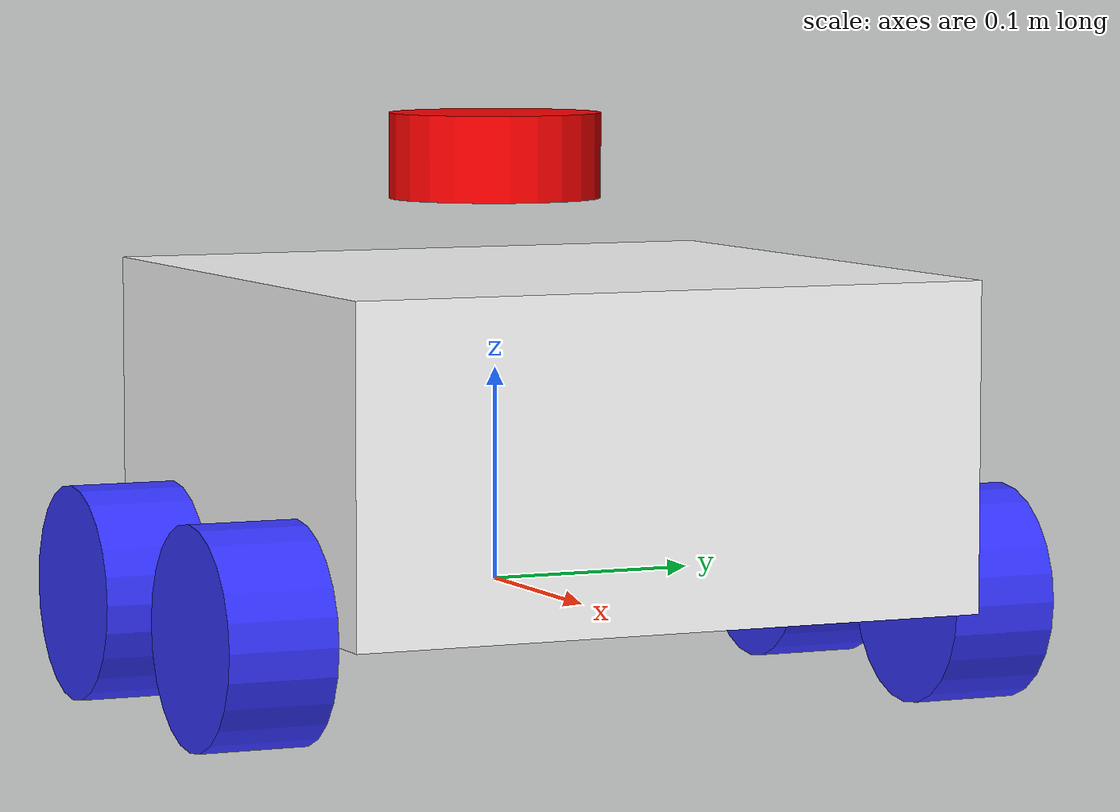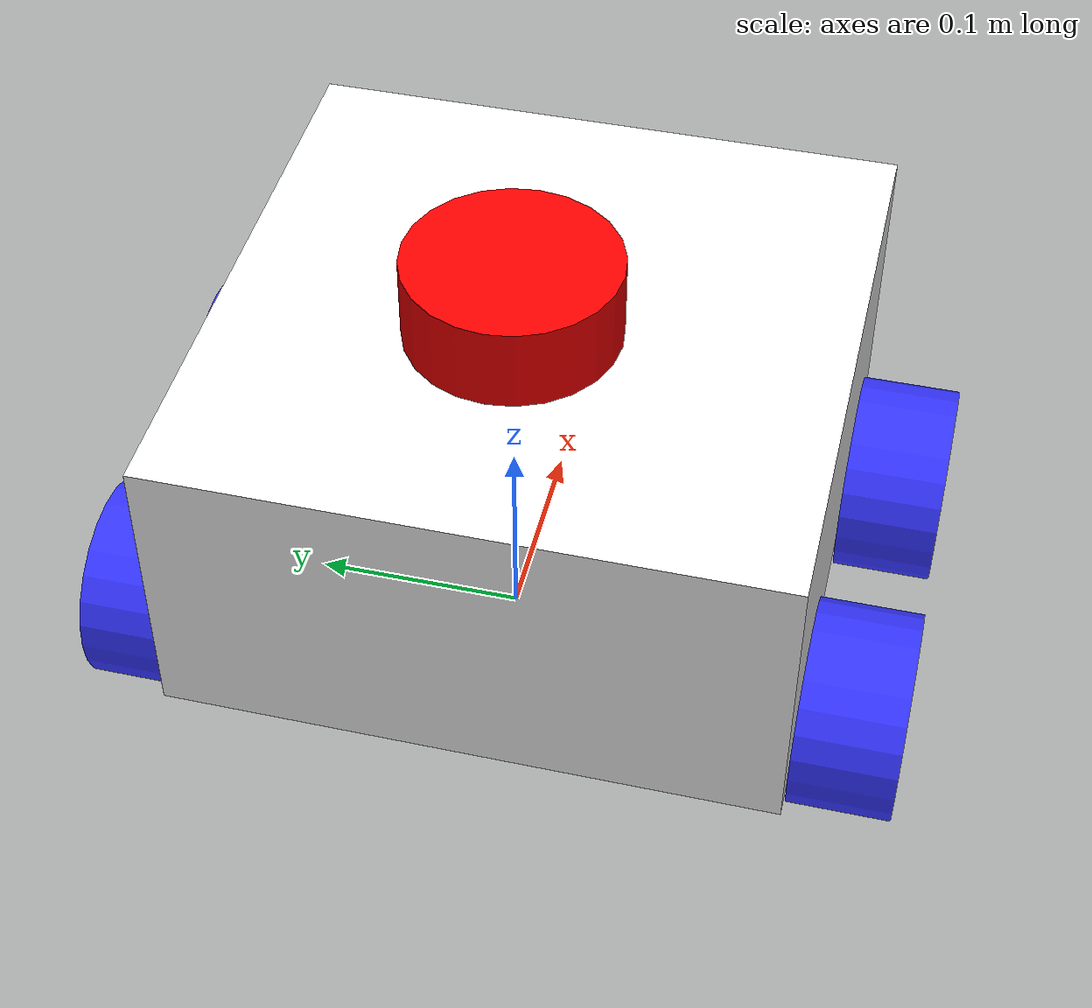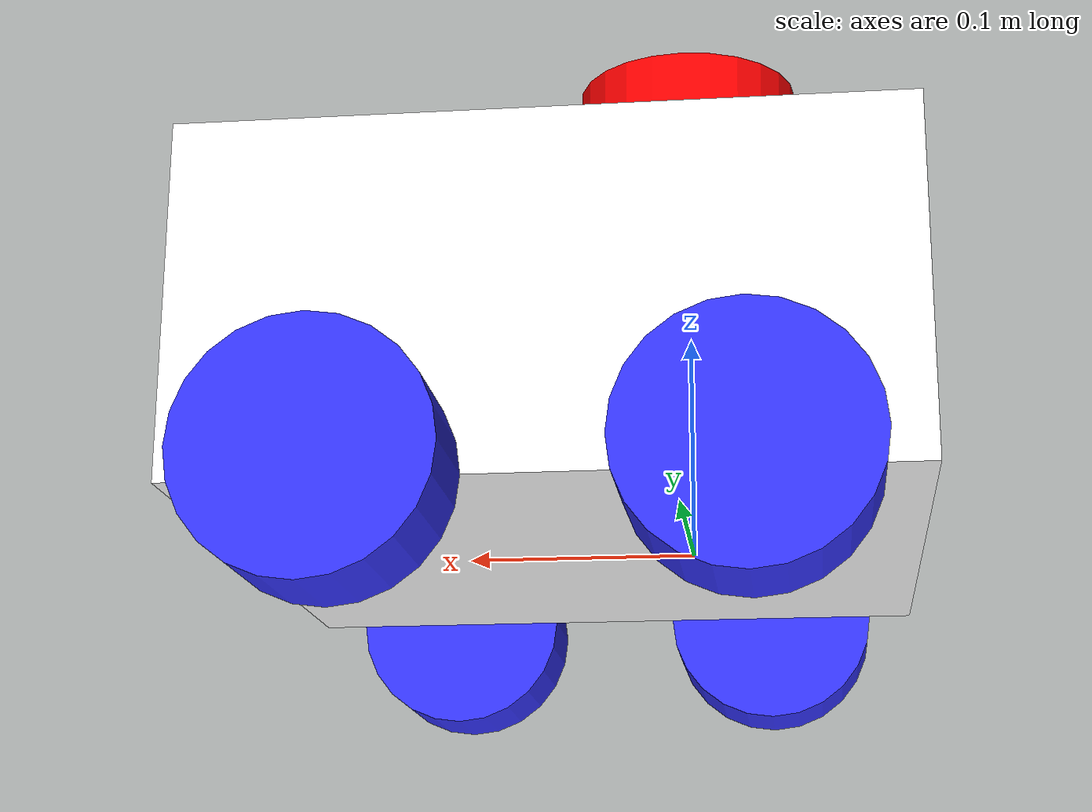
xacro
<?xml version="1.0"?>
<!-- loaded urdf file for robot-->
<robot xmlns:xacro="http://www.ros.org/wiki/xacro"  name="robot">

    <xacro:property name="use_ros2_control" value="true"/>

    <xacro:if value="${use_ros2_control}">
        <xacro:include filename="ros2_control.xacro"/>
    </xacro:if>

    <xacro:unless value="${use_ros2_control}">
        <xacro:include filename="gazebo_control.xacro"/>
    </xacro:unless>

    <xacro:include filename="robot_core_prac.xacro"/>
    <xacro:include filename="lidar.xacro"/>

</robot>

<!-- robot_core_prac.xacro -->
<!-- ROBOT CORE COMPONENTS-->

<!-- call xacro-->
<robot xmlns:xacro="http://www.ros.org/wiki/xacro">

    <!-- Inertial xacro-->
    <xacro:include filename="inertial_macros.xacro"/>

    <!-- Static Variables -->
    <xacro:property name="left_roll" value="${-pi/2}"/>
    <xacro:property name="right_roll" value="${pi/2}"/>

    <!-- Independent Variables -->
    <xacro:property name="chassis_base" value="0.3"/>
    <xacro:property name="chassis_height" value="0.15"/>
    <xacro:property name="chassis_mass" value="0.36"/>

    <xacro:property name="wheel_radius" value="0.05"/>
    <xacro:property name="wheel_length" value="0.05"/>
    <xacro:property name="wheel_mass" value="0.1"/>

    <!-- Dependent Variables-->
    <xacro:property name="chassis_joint_offset" value="${-chassis_base/3}"/>
    <xacro:property name="chassis_link_offset" value="${chassis_base/2}"/>
    <xacro:property name="chassis_height_offset" value="${chassis_height/2}"/>
    <xacro:property name="frontwheel_offset" value="${(chassis_base * 0.5/5) - (chassis_joint_offset)}"/>
    <xacro:property name="backwheel_offset" value="${-(chassis_base * 0.5/5)}"/>
    <xacro:property name="leftwheel_offset" value="${(chassis_base/2) + (wheel_length/2)}"/>
    <xacro:property name="rightwheel_offset" value="-${(chassis_base/2) + (wheel_length/2)}"/>

    <!-- Materials -->
    <material name="white">
        <color rgba="1 1 1 1" />
    </material>

    <material name="orange">
        <color rgba="1 0.3 1 1" />
    </material>

    <material name="blue">
        <color rgba="0.2 0.2 1 1"/>
    </material>

    <material name="black">
        <color rgba="0 0 0 1"/>
    </material>

    <material name="red">
        <color rgba="1 0 0 1"/>
    </material>

    <!-- links -->
    <link name="base">
    </link>

    <link name="footprint">
    </link>

    <link name="chassis">
        <visual>
            <origin xyz="${chassis_link_offset} 0 ${chassis_height_offset}"/>
            <geometry>
                <box size="${chassis_base} ${chassis_base} ${chassis_height}"/>
            </geometry>
            <material name="white"/>
        </visual>
        <collision>
            <origin xyz="${chassis_link_offset} 0 ${chassis_height_offset}"/>
            <geometry>
                <box size="${chassis_base} ${chassis_base} ${chassis_height}"/>
            </geometry>
        </collision>
        <xacro:inertial_box mass="${chassis_mass}" x="${chassis_base}" y="${chassis_base}" z="${chassis_height}">
            <origin xyz="${chassis_link_offset} 0 ${chassis_height_offset}" rpy="0 0 0"/>
        </xacro:inertial_box>
    </link>

    <link name="left_back_wheel">
        <visual>
            <geometry>
                <cylinder radius="${wheel_radius}" length="${wheel_length}"/>
            </geometry>
            <material name="blue"/>
        </visual>
        <collision>
            <geometry>
                <cylinder radius="${wheel_radius}" length="${wheel_length}"/>
            </geometry>
        </collision>
        <xacro:inertial_cylinder mass="${wheel_mass}" length="${wheel_length}" radius="${wheel_radius}">
            <origin xyz="0 0 0" rpy="0 0 0"/>
        </xacro:inertial_cylinder>
    </link>

    <link name="right_back_wheel">
        <visual>
            <geometry>
                <cylinder radius="${wheel_radius}" length="${wheel_length}"/>
            </geometry>
            <material name="blue"/>
        </visual>
        <collision>
            <geometry>
                <cylinder radius="${wheel_radius}" length="${wheel_length}"/>
            </geometry>
        </collision>
        <xacro:inertial_cylinder mass="${wheel_mass}" length="${wheel_length}" radius="${wheel_radius}">
            <origin xyz="0 0 0" rpy="0 0 0"/>
        </xacro:inertial_cylinder>
    </link>

    <link name="left_front_wheel">
        <visual>
            <geometry>
                <cylinder radius="${wheel_radius}" length="${wheel_length}"/>
            </geometry>
            <material name="blue"/>
        </visual>
        <collision>
            <geometry>
                <cylinder radius="${wheel_radius}" length="${wheel_length}"/>
            </geometry>
        </collision>
        <xacro:inertial_cylinder mass="${wheel_mass}" length="${wheel_length}" radius="${wheel_radius}">
            <origin xyz="0 0 0" rpy="0 0 0"/>
        </xacro:inertial_cylinder>
    </link>

    <link name="right_front_wheel">
        <visual>
            <geometry>
                <cylinder radius="${wheel_radius}" length="${wheel_length}"/>
            </geometry>
            <material name="blue"/>
        </visual>
        <collision>
            <geometry>
                <cylinder radius="${wheel_radius}" length="${wheel_length}"/>
            </geometry>
        </collision>
        <xacro:inertial_cylinder mass="${wheel_mass}" length="${wheel_length}" radius="${wheel_radius}">
            <origin xyz="0 0 0" rpy="0 0 0"/>
        </xacro:inertial_cylinder>
    </link>

    <!-- Joints -->
    <joint name="footprint-base" type="fixed">
        <parent link="base"/>
        <child link="footprint"/>
        <origin xyz="0 0 0" rpy="0 0 0"/>
    </joint>

    <joint name="chassis-base" type="fixed">
        <parent link="base"/>
        <child link="chassis"/>
        <origin xyz="${chassis_joint_offset} 0 0"/>
    </joint>

    <joint name="left_back_wheel-base" type="continuous">
        <parent link="base"/>
        <child link="left_back_wheel"/>
        <origin xyz="${backwheel_offset} ${leftwheel_offset} 0" rpy="${left_roll} 0 0"/>
        <axis xyz="0 0 1"/>
    </joint>

    <joint name="right_back_wheel-base" type="continuous">
        <parent link="base"/>
        <child link="right_back_wheel"/>
        <origin xyz="${backwheel_offset} ${rightwheel_offset} 0" rpy="${right_roll} 0 0"/>
        <axis xyz="0 0 -1"/>
    </joint>

    <joint name="left_front_wheel-base" type="continuous">
        <parent link="base"/>
        <child link="left_front_wheel"/>
        <origin xyz="${frontwheel_offset} ${leftwheel_offset} 0" rpy="${left_roll} 0 0"/>
        <axis xyz="0 0 1"/>
    </joint>

    <joint name="right_front_wheel-base" type="continuous">
        <parent link="base"/>
        <child link="right_front_wheel"/>
        <origin xyz="${frontwheel_offset} ${rightwheel_offset} 0" rpy="${right_roll} 0 0"/>
        <axis xyz="0 0 -1"/>
    </joint>

    <!-- Gazebo References-->
    <gazebo reference="chassis">
        <material>Gazebo/White</material>
    </gazebo>

    <gazebo reference="left_back_wheel">
        <material>Gazebo/Blue</material>
     </gazebo>

     <gazebo reference="right_back_wheel">
        <material>Gazebo/Blue</material>
     </gazebo>

</robot>

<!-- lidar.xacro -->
<robot xmlns.xacro="http://www.ros.org/wiki/xacro">

    <joint name="laser_joint" type="fixed">
        <parent link="chassis"/>
        <child link="laser_frame"/>
        <origin xyz="0.1 0 0.2" rpy="0 0 0"/>
    </joint>

    <link name="laser_frame">
        <visual>
            <geometry>
                <cylinder radius="0.05" length="0.04"/>
            </geometry>
            <material name="red"/>
        </visual>
        <collision>
            <geometry>
                <cylinder radius="0.05" length="0.04"/>
            </geometry>
        </collision>
        <inertial_cylinder mass="0.1" length="0.04" radius="0.05">
            <origin xyz="0 0 0" rpy="0 0 0"/>
        </inertial_cylinder>
    </link>

    <gazebo reference="laser_frame">
        <material>Gazebo/Red</material>

        <sensor name="laser" type="ray">
            <pose> 0 0 0 0 0 0 </pose>
            <visualize>true</visualize>
            <update_rate>50</update_rate>
            <ray>
                <scan>
                    <horizontal>
                        <samples>360</samples>
                        <min_angle>-3.14</min_angle>
                        <max_angle>3.14</max_angle>
                    </horizontal>
                </scan>
                <range>
                    <min>0.3</min>
                    <max>12</max>
                </range>
            </ray>
            <plugin name="laser_controller" filename="libgazebo_ros_ray_sensor.so">
                <ros>
                    <remapping>~/out:=scan</remapping>
                </ros>
                <output_type>sensor_msgs/LaserScan</output_type>
                <frame_name>laser_frame</frame_name>
            </plugin>
        </sensor>
    </gazebo>
</robot>
